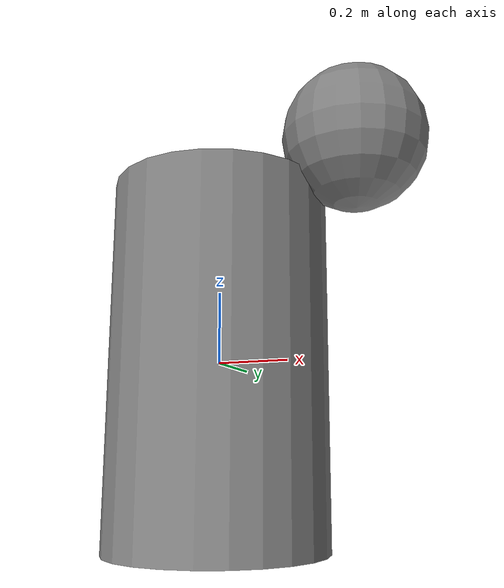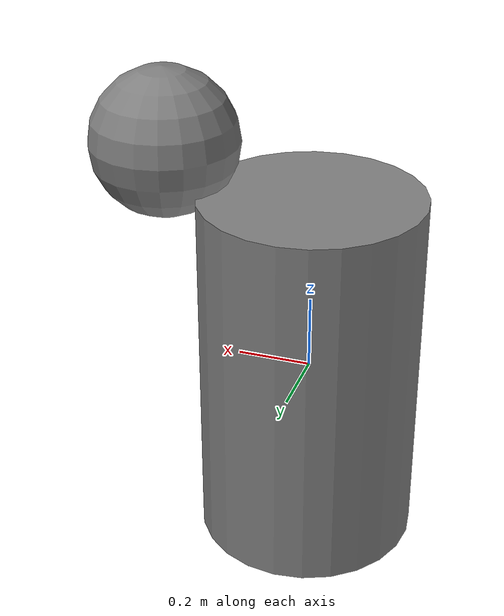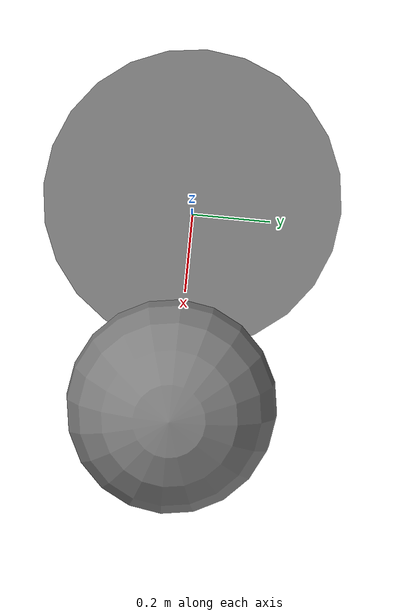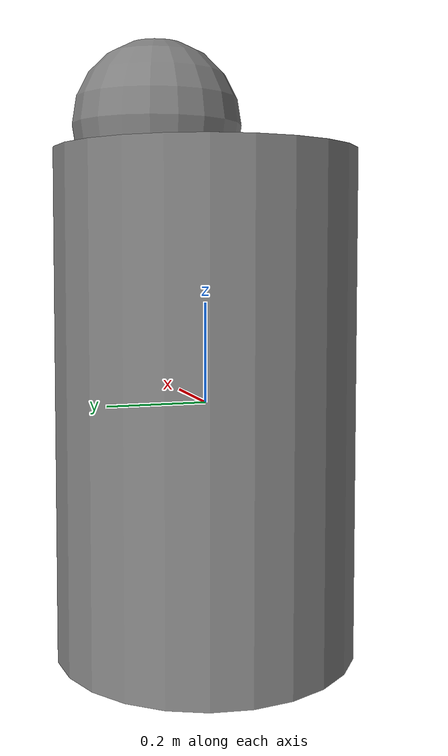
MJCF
<mujoco model="cyl_sphere_rim">
            <option gravity="0 0 0" timestep="0.001"/>
            <worldbody>
                <body name="cyl" pos="0 0 0">
                    <joint type="free"/>
                    <geom type="cylinder" size="0.3 0.5"/>
                </body>
                <body name="sph" pos="0.4 0 0.6">
                    <joint type="free"/>
                    <geom type="sphere" size="0.2"/>
                </body>
            </worldbody>
        </mujoco>
